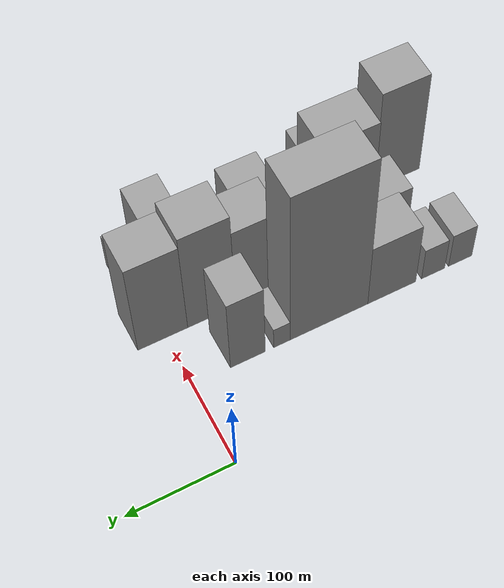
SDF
<sdf version="1.6">
 <world name="default">
  <model name="building_9">
   <static>1</static>
   <pose>100.0000 -263.0421 0 0.000000 0.000000 0.000000</pose>
   <link name="link">
    <pose>0 0 24.00 0 0 0</pose>
    <collision name="collision"><geometry><box><size>40.0000 24.1975 48.0000</size></box></geometry></collision>
    <visual name="visual">
     <cast_shadows>0</cast_shadows>
     <geometry><box><size>40.0000 24.1975 48.0000</size></box></geometry>
     <material>
      <script>
       <uri>model://grey_wall/materials/scripts</uri>
       <uri>model://grey_wall/materials/textures</uri>
       <name>vrc/grey_wall</name>
      </script>
     </material>
    </visual>
   </link>
  </model>
  <model name="building_10">
   <static>1</static>
   <pose>100.0000 -235.0637 0 0.000000 0.000000 0.000000</pose>
   <link name="link">
    <pose>0 0 22.50 0 0 0</pose>
    <collision name="collision"><geometry><box><size>40.0000 23.7592 45.0000</size></box></geometry></collision>
    <visual name="visual">
     <cast_shadows>0</cast_shadows>
     <geometry><box><size>40.0000 23.7592 45.0000</size></box></geometry>
     <material>
      <script>
       <uri>model://grey_wall/materials/scripts</uri>
       <uri>model://grey_wall/materials/textures</uri>
       <name>vrc/grey_wall</name>
      </script>
     </material>
    </visual>
   </link>
  </model>
  <model name="building_11">
   <static>1</static>
   <pose>100.0000 -192.9801 0 0.000000 0.000000 0.000000</pose>
   <link name="link">
    <pose>0 0 43.50 0 0 0</pose>
    <collision name="collision"><geometry><box><size>40.0000 48.4080 87.0000</size></box></geometry></collision>
    <visual name="visual">
     <cast_shadows>0</cast_shadows>
     <geometry><box><size>40.0000 48.4080 87.0000</size></box></geometry>
     <material>
      <script>
       <uri>model://grey_wall/materials/scripts</uri>
       <uri>model://grey_wall/materials/textures</uri>
       <name>vrc/grey_wall</name>
      </script>
     </material>
    </visual>
   </link>
  </model>
  <model name="building_12">
   <static>1</static>
   <pose>100.0000 -130.5440 0 0.000000 0.000000 0.000000</pose>
   <link name="link">
    <pose>0 0 106.50 0 0 0</pose>
    <collision name="collision"><geometry><box><size>40.0000 76.4643 213.0000</size></box></geometry></collision>
    <visual name="visual">
     <cast_shadows>0</cast_shadows>
     <geometry><box><size>40.0000 76.4643 213.0000</size></box></geometry>
     <material>
      <script>
       <uri>model://grey_wall/materials/scripts</uri>
       <uri>model://grey_wall/materials/textures</uri>
       <name>vrc/grey_wall</name>
      </script>
     </material>
    </visual>
   </link>
  </model>
  <model name="building_13">
   <static>1</static>
   <pose>100.0000 -84.3741 0 0.000000 0.000000 0.000000</pose>
   <link name="link">
    <pose>0 0 15.00 0 0 0</pose>
    <collision name="collision"><geometry><box><size>40.0000 15.8754 30.0000</size></box></geometry></collision>
    <visual name="visual">
     <cast_shadows>0</cast_shadows>
     <geometry><box><size>40.0000 15.8754 30.0000</size></box></geometry>
     <material>
      <script>
       <uri>model://grey_wall/materials/scripts</uri>
       <uri>model://grey_wall/materials/textures</uri>
       <name>vrc/grey_wall</name>
      </script>
     </material>
    </visual>
   </link>
  </model>
  <model name="building_14">
   <static>1</static>
   <pose>100.0000 -51.7980 0 0.000000 0.000000 0.000000</pose>
   <link name="link">
    <pose>0 0 51.00 0 0 0</pose>
    <collision name="collision"><geometry><box><size>40.0000 33.2770 102.0000</size></box></geometry></collision>
    <visual name="visual">
     <cast_shadows>0</cast_shadows>
     <geometry><box><size>40.0000 33.2770 102.0000</size></box></geometry>
     <material>
      <script>
       <uri>model://grey_wall/materials/scripts</uri>
       <uri>model://grey_wall/materials/textures</uri>
       <name>vrc/grey_wall</name>
      </script>
     </material>
    </visual>
   </link>
  </model>
  <model name="building_35">
   <static>1</static>
   <pose>152.0000 -221.7315 0 0.000000 0.000000 0.000000</pose>
   <link name="link">
    <pose>0 0 31.50 0 0 0</pose>
    <collision name="collision"><geometry><box><size>40.0000 36.2051 63.0000</size></box></geometry></collision>
    <visual name="visual">
     <cast_shadows>0</cast_shadows>
     <geometry><box><size>40.0000 36.2051 63.0000</size></box></geometry>
     <material>
      <script>
       <uri>model://grey_wall/materials/scripts</uri>
       <uri>model://grey_wall/materials/textures</uri>
       <name>vrc/grey_wall</name>
      </script>
     </material>
    </visual>
   </link>
  </model>
  <model name="building_36">
   <static>1</static>
   <pose>152.0000 -174.0353 0 0.000000 0.000000 0.000000</pose>
   <link name="link">
    <pose>0 0 88.50 0 0 0</pose>
    <collision name="collision"><geometry><box><size>40.0000 53.1873 177.0000</size></box></geometry></collision>
    <visual name="visual">
     <cast_shadows>0</cast_shadows>
     <geometry><box><size>40.0000 53.1873 177.0000</size></box></geometry>
     <material>
      <script>
       <uri>model://grey_wall/materials/scripts</uri>
       <uri>model://grey_wall/materials/textures</uri>
       <name>vrc/grey_wall</name>
      </script>
     </material>
    </visual>
   </link>
  </model>
  <model name="building_37">
   <static>1</static>
   <pose>152.0000 -126.2122 0 0.000000 0.000000 0.000000</pose>
   <link name="link">
    <pose>0 0 22.50 0 0 0</pose>
    <collision name="collision"><geometry><box><size>40.0000 24.4589 45.0000</size></box></geometry></collision>
    <visual name="visual">
     <cast_shadows>0</cast_shadows>
     <geometry><box><size>40.0000 24.4589 45.0000</size></box></geometry>
     <material>
      <script>
       <uri>model://grey_wall/materials/scripts</uri>
       <uri>model://grey_wall/materials/textures</uri>
       <name>vrc/grey_wall</name>
      </script>
     </material>
    </visual>
   </link>
  </model>
  <model name="building_38">
   <static>1</static>
   <pose>152.0000 -88.5632 0 0.000000 0.000000 0.000000</pose>
   <link name="link">
    <pose>0 0 57.00 0 0 0</pose>
    <collision name="collision"><geometry><box><size>40.0000 44.8390 114.0000</size></box></geometry></collision>
    <visual name="visual">
     <cast_shadows>0</cast_shadows>
     <geometry><box><size>40.0000 44.8390 114.0000</size></box></geometry>
     <material>
      <script>
       <uri>model://grey_wall/materials/scripts</uri>
       <uri>model://grey_wall/materials/textures</uri>
       <name>vrc/grey_wall</name>
      </script>
     </material>
    </visual>
   </link>
  </model>
  <model name="building_39">
   <static>1</static>
   <pose>152.0000 -43.1254 0 0.000000 0.000000 0.000000</pose>
   <link name="link">
    <pose>0 0 69.00 0 0 0</pose>
    <collision name="collision"><geometry><box><size>40.0000 46.0368 138.0000</size></box></geometry></collision>
    <visual name="visual">
     <cast_shadows>0</cast_shadows>
     <geometry><box><size>40.0000 46.0368 138.0000</size></box></geometry>
     <material>
      <script>
       <uri>model://grey_wall/materials/scripts</uri>
       <uri>model://grey_wall/materials/textures</uri>
       <name>vrc/grey_wall</name>
      </script>
     </material>
    </visual>
   </link>
  </model>
  <model name="building_40">
   <static>1</static>
   <pose>152.0000 3.5259 0 0.000000 0.000000 0.000000</pose>
   <link name="link">
    <pose>0 0 63.00 0 0 0</pose>
    <collision name="collision"><geometry><box><size>40.0000 47.2658 126.0000</size></box></geometry></collision>
    <visual name="visual">
     <cast_shadows>0</cast_shadows>
     <geometry><box><size>40.0000 47.2658 126.0000</size></box></geometry>
     <material>
      <script>
       <uri>model://grey_wall/materials/scripts</uri>
       <uri>model://grey_wall/materials/textures</uri>
       <name>vrc/grey_wall</name>
      </script>
     </material>
    </visual>
   </link>
  </model>
  <model name="building_63">
   <static>1</static>
   <pose>204.0000 -258.8673 0 0.000000 0.000000 0.000000</pose>
   <link name="link">
    <pose>0 0 67.50 0 0 0</pose>
    <collision name="collision"><geometry><box><size>40.0000 47.4712 135.0000</size></box></geometry></collision>
    <visual name="visual">
     <cast_shadows>0</cast_shadows>
     <geometry><box><size>40.0000 47.4712 135.0000</size></box></geometry>
     <material>
      <script>
       <uri>model://grey_wall/materials/scripts</uri>
       <uri>model://grey_wall/materials/textures</uri>
       <name>vrc/grey_wall</name>
      </script>
     </material>
    </visual>
   </link>
  </model>
  <model name="building_64">
   <static>1</static>
   <pose>204.0000 -217.2198 0 0.000000 0.000000 0.000000</pose>
   <link name="link">
    <pose>0 0 15.00 0 0 0</pose>
    <collision name="collision"><geometry><box><size>40.0000 15.8237 30.0000</size></box></geometry></collision>
    <visual name="visual">
     <cast_shadows>0</cast_shadows>
     <geometry><box><size>40.0000 15.8237 30.0000</size></box></geometry>
     <material>
      <script>
       <uri>model://grey_wall/materials/scripts</uri>
       <uri>model://grey_wall/materials/textures</uri>
       <name>vrc/grey_wall</name>
      </script>
     </material>
    </visual>
   </link>
  </model>
  <model name="building_65">
   <static>1</static>
   <pose>204.0000 -186.7646 0 0.000000 0.000000 0.000000</pose>
   <link name="link">
    <pose>0 0 42.00 0 0 0</pose>
    <collision name="collision"><geometry><box><size>40.0000 45.0867 84.0000</size></box></geometry></collision>
    <visual name="visual">
     <cast_shadows>0</cast_shadows>
     <geometry><box><size>40.0000 45.0867 84.0000</size></box></geometry>
     <material>
      <script>
       <uri>model://grey_wall/materials/scripts</uri>
       <uri>model://grey_wall/materials/textures</uri>
       <name>vrc/grey_wall</name>
      </script>
     </material>
    </visual>
   </link>
  </model>
  <model name="building_66">
   <static>1</static>
   <pose>204.0000 -153.0444 0 0.000000 0.000000 0.000000</pose>
   <link name="link">
    <pose>0 0 15.00 0 0 0</pose>
    <collision name="collision"><geometry><box><size>40.0000 16.3539 30.0000</size></box></geometry></collision>
    <visual name="visual">
     <cast_shadows>0</cast_shadows>
     <geometry><box><size>40.0000 16.3539 30.0000</size></box></geometry>
     <material>
      <script>
       <uri>model://grey_wall/materials/scripts</uri>
       <uri>model://grey_wall/materials/textures</uri>
       <name>vrc/grey_wall</name>
      </script>
     </material>
    </visual>
   </link>
  </model>
  <model name="building_67">
   <static>1</static>
   <pose>204.0000 -139.9452 0 0.000000 0.000000 0.000000</pose>
   <link name="link">
    <pose>0 0 12.00 0 0 0</pose>
    <collision name="collision"><geometry><box><size>40.0000 9.8444 24.0000</size></box></geometry></collision>
    <visual name="visual">
     <cast_shadows>0</cast_shadows>
     <geometry><box><size>40.0000 9.8444 24.0000</size></box></geometry>
     <material>
      <script>
       <uri>model://grey_wall/materials/scripts</uri>
       <uri>model://grey_wall/materials/textures</uri>
       <name>vrc/grey_wall</name>
      </script>
     </material>
    </visual>
   </link>
  </model>
  <model name="building_68">
   <static>1</static>
   <pose>204.0000 -114.8810 0 0.000000 0.000000 0.000000</pose>
   <link name="link">
    <pose>0 0 36.00 0 0 0</pose>
    <collision name="collision"><geometry><box><size>40.0000 40.2841 72.0000</size></box></geometry></collision>
    <visual name="visual">
     <cast_shadows>0</cast_shadows>
     <geometry><box><size>40.0000 40.2841 72.0000</size></box></geometry>
     <material>
      <script>
       <uri>model://grey_wall/materials/scripts</uri>
       <uri>model://grey_wall/materials/textures</uri>
       <name>vrc/grey_wall</name>
      </script>
     </material>
    </visual>
   </link>
  </model>
  <model name="building_69">
   <static>1</static>
   <pose>204.0000 -72.8657 0 0.000000 0.000000 0.000000</pose>
   <link name="link">
    <pose>0 0 22.50 0 0 0</pose>
    <collision name="collision"><geometry><box><size>40.0000 23.7465 45.0000</size></box></geometry></collision>
    <visual name="visual">
     <cast_shadows>0</cast_shadows>
     <geometry><box><size>40.0000 23.7465 45.0000</size></box></geometry>
     <material>
      <script>
       <uri>model://grey_wall/materials/scripts</uri>
       <uri>model://grey_wall/materials/textures</uri>
       <name>vrc/grey_wall</name>
      </script>
     </material>
    </visual>
   </link>
  </model>
  <model name="building_70">
   <static>1</static>
   <pose>204.0000 -51.9399 0 0.000000 0.000000 0.000000</pose>
   <link name="link">
    <pose>0 0 18.00 0 0 0</pose>
    <collision name="collision"><geometry><box><size>40.0000 18.1051 36.0000</size></box></geometry></collision>
    <visual name="visual">
     <cast_shadows>0</cast_shadows>
     <geometry><box><size>40.0000 18.1051 36.0000</size></box></geometry>
     <material>
      <script>
       <uri>model://grey_wall/materials/scripts</uri>
       <uri>model://grey_wall/materials/textures</uri>
       <name>vrc/grey_wall</name>
      </script>
     </material>
    </visual>
   </link>
  </model>
  <model name="building_71">
   <static>1</static>
   <pose>204.0000 -25.9015 0 0.000000 0.000000 0.000000</pose>
   <link name="link">
    <pose>0 0 49.50 0 0 0</pose>
    <collision name="collision"><geometry><box><size>40.0000 33.9719 99.0000</size></box></geometry></collision>
    <visual name="visual">
     <cast_shadows>0</cast_shadows>
     <geometry><box><size>40.0000 33.9719 99.0000</size></box></geometry>
     <material>
      <script>
       <uri>model://grey_wall/materials/scripts</uri>
       <uri>model://grey_wall/materials/textures</uri>
       <name>vrc/grey_wall</name>
      </script>
     </material>
    </visual>
   </link>
  </model>
  <model name="building_72">
   <static>1</static>
   <pose>204.0000 3.3660 0 0.000000 0.000000 0.000000</pose>
   <link name="link">
    <pose>0 0 22.50 0 0 0</pose>
    <collision name="collision"><geometry><box><size>40.0000 24.5631 45.0000</size></box></geometry></collision>
    <visual name="visual">
     <cast_shadows>0</cast_shadows>
     <geometry><box><size>40.0000 24.5631 45.0000</size></box></geometry>
     <material>
      <script>
       <uri>model://grey_wall/materials/scripts</uri>
       <uri>model://grey_wall/materials/textures</uri>
       <name>vrc/grey_wall</name>
      </script>
     </material>
    </visual>
   </link>
  </model>
 </world>
</sdf>
